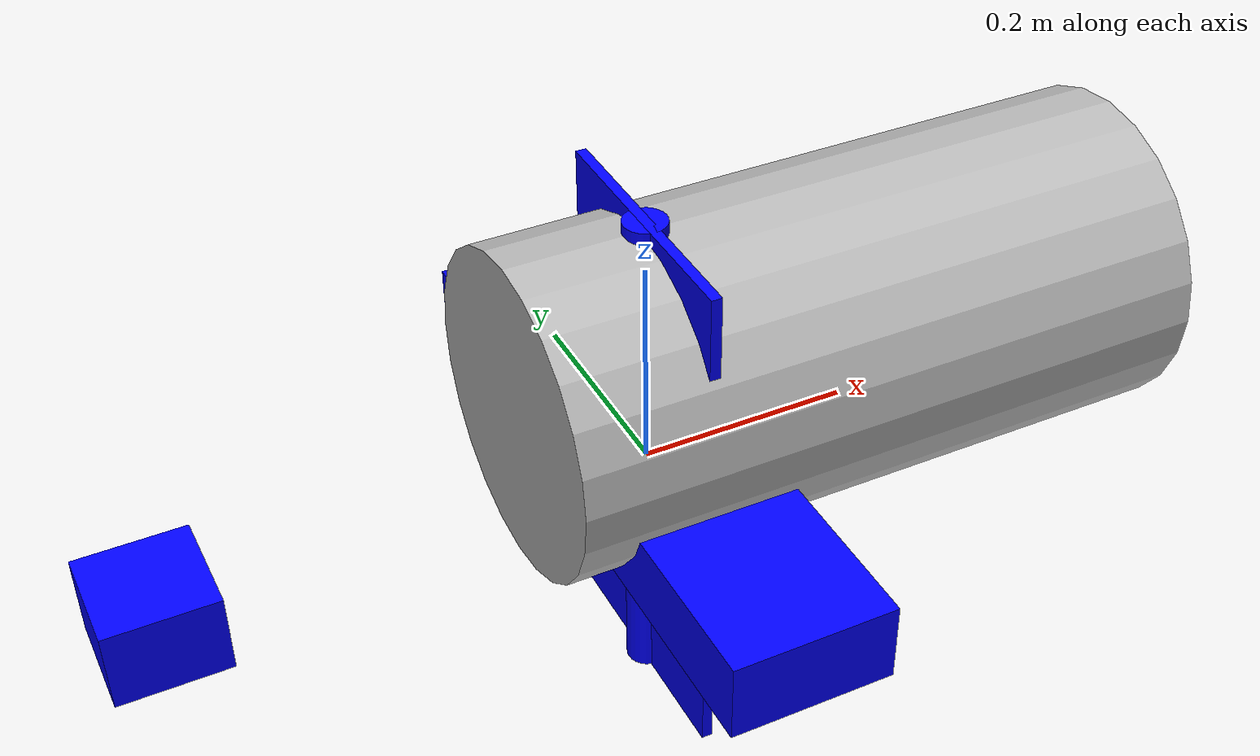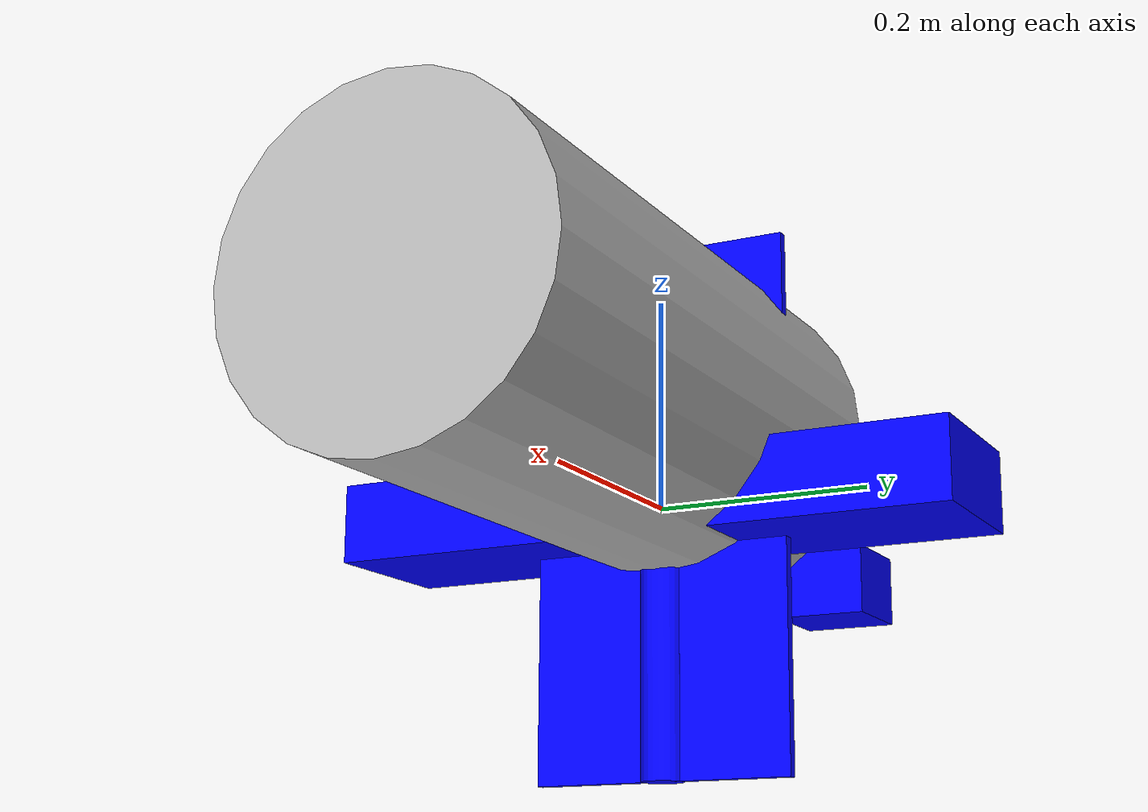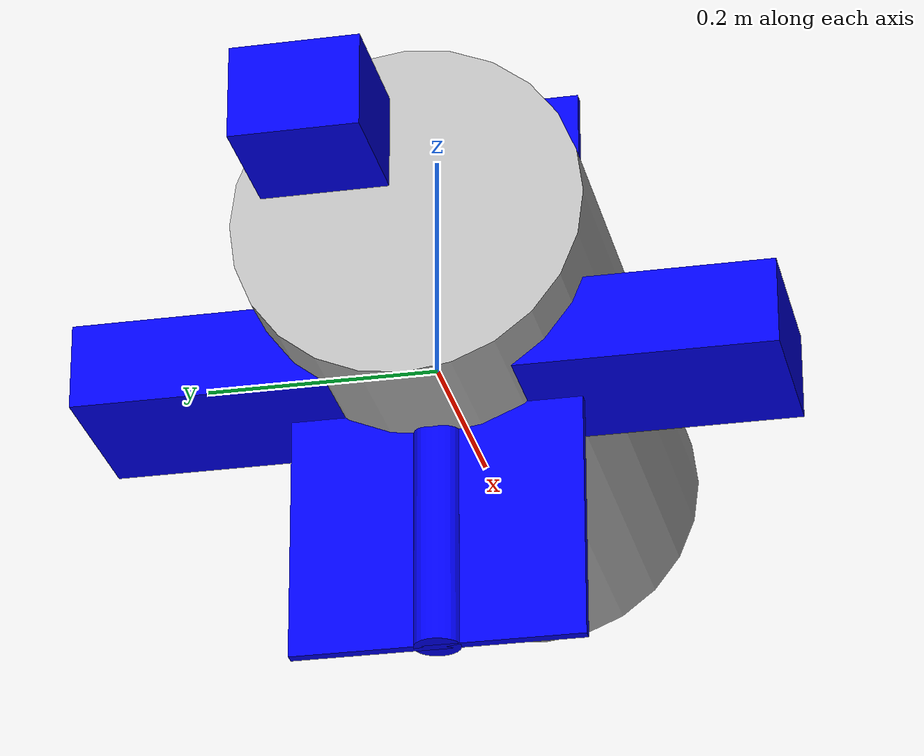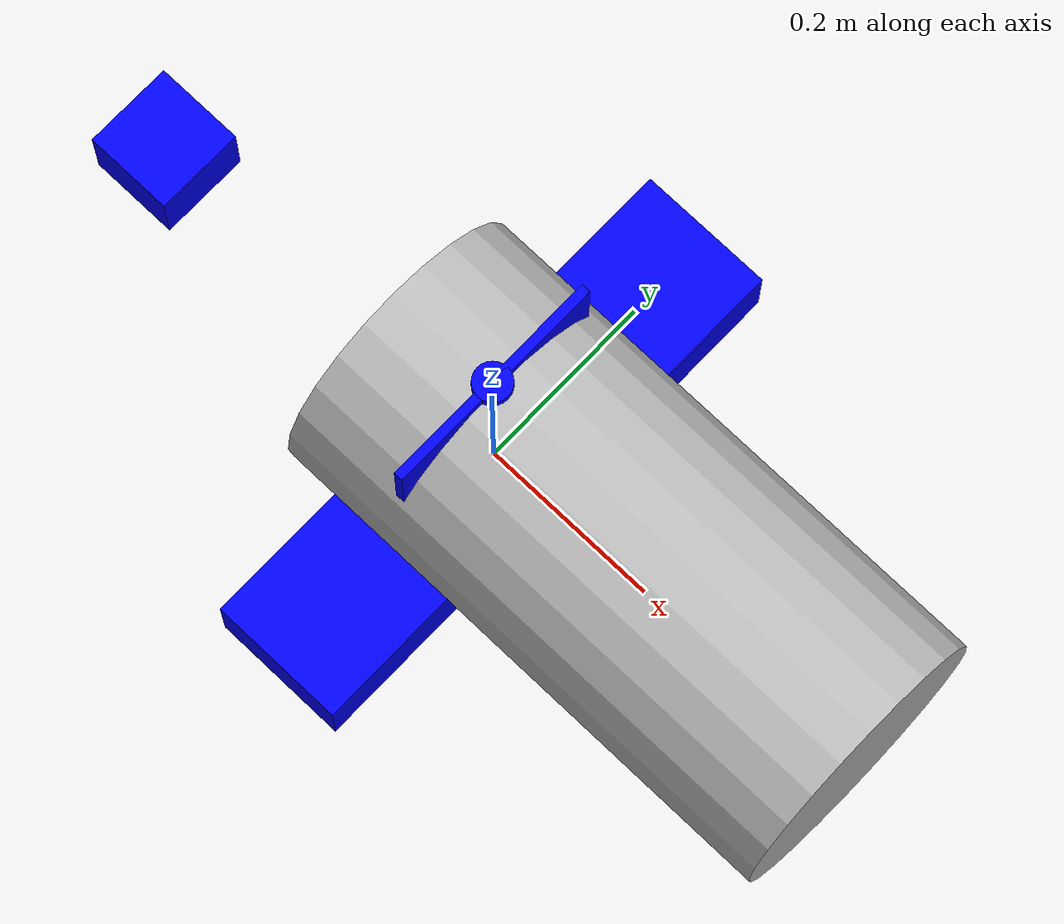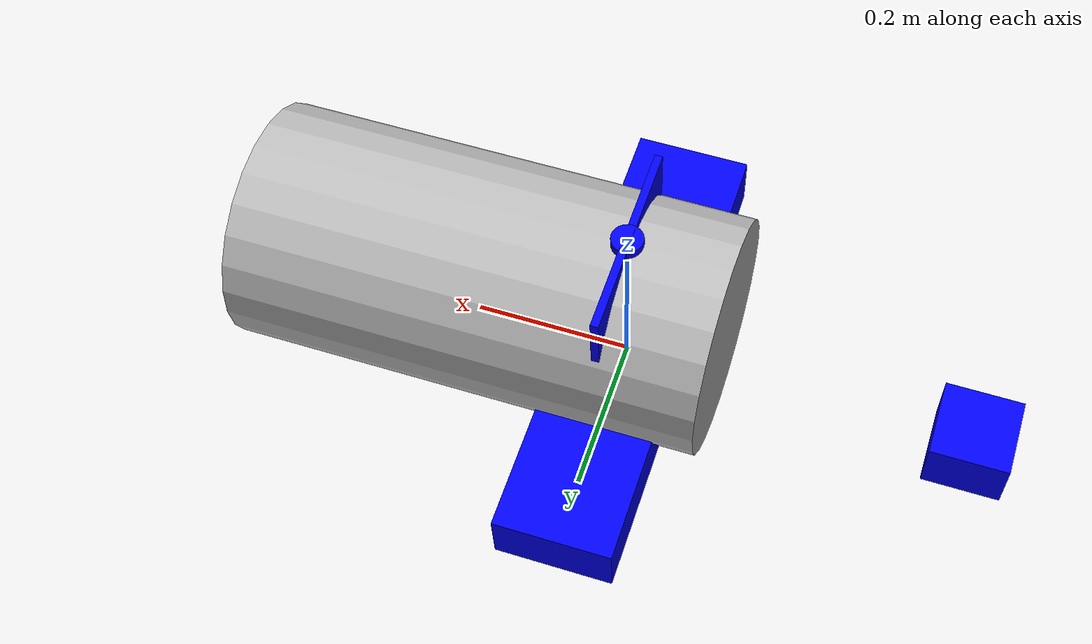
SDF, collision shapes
<?xml version="1.0" ?>
<sdf version="1.9">
	<!-- Sailboat model -->
	<model name="single_sailboat">
		<!-- Boat -->
		<link name="base_link">
			<pose>0 0 0 0 0 1.5708</pose>
			<inertial>
				<mass>2.5</mass>
				<inertia>
					<ixx>0.00589375</ixx>
					<ixy>0</ixy>
					<ixz>0</ixz>
					<iyy>0.076171875</iyy>
					<iyz>0</iyz>
					<izz>0.0796875</izz>
				</inertia>
			</inertial>

			<collision name="base_link_collision">

				<geometry>
					<box>
						<size>0.6 0.15 0.075</size>
					</box>

				</geometry>
			</collision>

			<visual name="base_link_visual">
				<geometry>
					<mesh>
						<uri>meshes/sailboat.dae</uri>
					</mesh>
				</geometry>
				<material>
					<ambient>0.0 0.0 1.0 1</ambient>
					<diffuse>0.0 0.0 1.0 1</diffuse>
					<specular>0.0 0.0 1.0 1</specular>
				</material>
			</visual>
		</link>
		<link name="secondary_link">
			<pose>0.1725 0 0.09 0 1.570796327 0</pose>
			<inertial>
				<mass>0.5</mass>
				<inertia>
					<ixx>0.0158</ixx>
					<ixy>0</ixy>
					<ixz>0</ixz>
					<iyy>0.0016</iyy>
					<iyz>0</iyz>
					<izz>0.0158</izz>
				</inertia>
			</inertial>
			<collision name="secondary_link_collision">
				<geometry>
					<cylinder>
						<radius>0.15</radius>
						<length>0.6</length>
					</cylinder>
				</geometry>
			</collision>
			<self_collide>false</self_collide>
		</link>

		<!-- Rudder -->
		<link name="rudder_fin">
			<pose>-0.45 0 0 0 0 0</pose>
			<inertial>
				<mass>0.2</mass>
				<inertia>
					<ixx>0.00009875</ixx>
					<ixy>0.0</ixy>
					<ixz>0.0</ixz>
					<iyy>0.00009875</iyy>
					<iyz>0.0</iyz>
					<izz>0.00001</izz>
				</inertia>
			</inertial>
			<collision name="rudder_collision">
				<geometry>
					<box>
						<size>0.1 0.1 0.075</size>
					</box>
				</geometry>
			</collision>
			<visual name= "rudder_visual">
				<pose>0 0 0.05 0 0 1.570796327</pose>
				<geometry>
					<mesh>
						<uri>meshes/direccion.dae</uri>
					</mesh>
				</geometry>
				<material>
					<ambient>0.0 0.0 1.0 1</ambient>
					<diffuse>0.0 0.0 1.0 1</diffuse>
					<specular>0.0 0.0 1.0 1</specular>
				</material>
			</visual>
		</link>
		<!-- Main sail-->
		<link name="sail_link">
			<pose>0 0 0 0 0 0</pose>
			<inertial>
				<mass>0.5</mass>
				<inertia>
					<ixx>0.010466667</ixx>
					<ixy>0.0</ixy>
					<ixz>0.0</ixz>
					<iyy>0.010466667</iyy>
					<iyz>0.0</iyz>
					<izz>0.00001</izz>
				</inertia>
			</inertial>
			<collision name="sail_collision">
				<pose>0 0 0 0 0 1.570796327</pose>
				<geometry>
					<box>
						<size>0.25 0.01 0.5</size>
					</box>
				</geometry>
			</collision>
			<visual name= "sail_visual">
				<pose>0 0 -0.15 0 0 1.570796327</pose>
				<geometry>
					<mesh>
						<uri>meshes/vela.dae</uri>
					</mesh>
				</geometry>
				<material>
					<ambient>0.0 0.0 1.0 1</ambient>
					<diffuse>0.0 0.0 1.0 1</diffuse>
					<specular>0.0 0.0 1.0 1</specular>
				</material>
			</visual>
			<enable_wind>true</enable_wind>
		</link>

		<!-- Keel -->
		<link name="keel_link">
			<pose> 0 0 0 0 0 0 </pose>
			<visual name= "keel_visual">
				<pose>0 0 0.05 0 0 1.570796327</pose>
				<geometry>
					<mesh>
						<uri>meshes/quilla.dae</uri>
					</mesh>
				</geometry>
				<material>
					<ambient>0.0 0.0 1.0 1</ambient>
					<diffuse>0.0 0.0 1.0 1</diffuse>
					<specular>0.0 0.0 1.0 1</specular>
				</material>
			</visual>
			<collision name="keel_collision">
				<geometry>
					<cylinder>
						<length>0.5</length>
						<radius>0.02</radius>
					</cylinder>
				</geometry>
			</collision>
			<inertial>
				<pose>0 0 -0.25 0 0 0</pose>
				<mass>0.5</mass>
				<inertia>
					<ixx>0.010466667</ixx>
					<ixy>0.0</ixy>
					<ixz>0.0</ixz>
					<iyy>0.010466667</iyy>
					<iyz>0.0</iyz>
					<izz>0.0001</izz>
				</inertia>
			</inertial>
		</link>

		<!-- Joints -->

		<joint name="rudder_fin_joint" type="revolute">
			<pose>0 0 0 0 0 0</pose>
			<parent>base_link</parent>
			<child>rudder_fin</child>
			<axis>
				<xyz>0 0 1</xyz>
				<limit>
					<lower>-0.261799</lower>
					<upper>0.261799</upper>
					<effort>-1</effort>
					<velocity>-1</velocity>
				</limit>
			</axis>
		</joint>
		<joint name="mainSail_joint" type="revolute">
			<pose>0 0 0 0 0 0</pose>
			<parent>base_link</parent>
			<child>sail_link</child>
			<axis>
				<xyz>0 0 1</xyz>
				<limit>
					<lower>-0.261799</lower>
					<upper>0.261799</upper>
					<effort>-1</effort>
					<velocity>-1</velocity>
				</limit>
			</axis>
		</joint>
		<joint name='keel_joint' type='fixed'>
			<pose relative_to='base_link'>0 0 -0.1 0 0 0</pose>
			<parent>base_link</parent>
			<child>keel_link</child>
			<axis>
				<dynamics>
					<spring_reference>0</spring_reference>
					<spring_stiffness>0</spring_stiffness>
				</dynamics>
				<xyz>0 0 1</xyz>
				<limit>
					<lower>-10000000000000000</lower>
					<upper>10000000000000000</upper>
				</limit>
			</axis>
			<physics>
				<ode>
					<limit>
						<cfm>0</cfm>
						<erp>0.20000000000000001</erp>
					</limit>
				</ode>
			</physics>
		</joint>
		<joint name='secondary_link_joint' type='fixed'>
			<pose relative_to='base_link'>0 0 -0.1 0 0 0</pose>
			<parent>base_link</parent>
			<child>secondary_link</child>
			<axis>
				<dynamics>
					<spring_reference>0</spring_reference>
					<spring_stiffness>0</spring_stiffness>
				</dynamics>
				<xyz>0 0 1</xyz>
				<limit>
					<lower>-10000000000000000</lower>
					<upper>10000000000000000</upper>
				</limit>
			</axis>
			<physics>
				<ode>
					<limit>
						<cfm>0</cfm>
						<erp>0.20000000000000001</erp>
					</limit>
				</ode>
			</physics>
		</joint>
		<!-- Controllers Pluggins -->
		<plugin filename="gz-sim-joint-position-controller-system" name="gz::sim::systems::JointPositionController">
			<joint_name>rudder_fin_joint</joint_name>
			<p_gain>0.1</p_gain>
		</plugin>
		<plugin filename="gz-sim-joint-position-controller-system" name="gz::sim::systems::JointPositionController">
			<joint_name>mainSail_joint</joint_name>
			<p_gain>0.1</p_gain>
		</plugin>
		<plugin filename="libgz-sim-pose-publisher-system.so" name="gz::sim::systems::PosePublisher">
			<publish_link_pose>true</publish_link_pose>
			<publish_sensor_pose>true</publish_sensor_pose>
			<publish_collision_pose>false</publish_collision_pose>
			<publish_visual_pose>false</publish_visual_pose>
			<publish_nested_model_pose>true</publish_nested_model_pose>
			<publish_model_pose>false</publish_model_pose>
			<use_pose_vector_msg>true</use_pose_vector_msg>
			<static_publisher>true</static_publisher>
			<static_update_frequency>1</static_update_frequency>
		</plugin>

		<!-- Dynamics Pluggins -->
		<plugin filename="gz-sim-lift-drag-system" name="gz::sim::systems::LiftDrag">
			<air_density>1000</air_density>
			<cla>4.13</cla>
			<cla_stall>-1.1</cla_stall>
			<cda>0.2</cda>
			<cda_stall>0.03</cda_stall>
			<alpha_stall>0.17</alpha_stall>
			<a0>0</a0>
			<area>0.0244</area>
			<upward>0 1 0</upward>
			<forward>1 0 0</forward>
			<link_name>rudder_fin</link_name>
			<cp>0 0 0</cp>
		</plugin>
		<plugin	filename="gz-sim-lift-drag-system" name="gz::sim::systems::LiftDrag">
		    <air_density>1000</air_density>
		    <cla>4.13</cla>
		    <cla_stall>-1.1</cla_stall>
		    <cda>0.2</cda>
		    <cda_stall>0.03</cda_stall>
		    <alpha_stall>0.17</alpha_stall>
		    <a0>0</a0>
		    <area>0.0244</area>
		    <upward>0 1 0</upward>
		    <forward>1 0 0</forward>
		    <link_name>keel_link</link_name>
		    <cp>0 0 0</cp>
		</plugin>
	</model>
</sdf>
